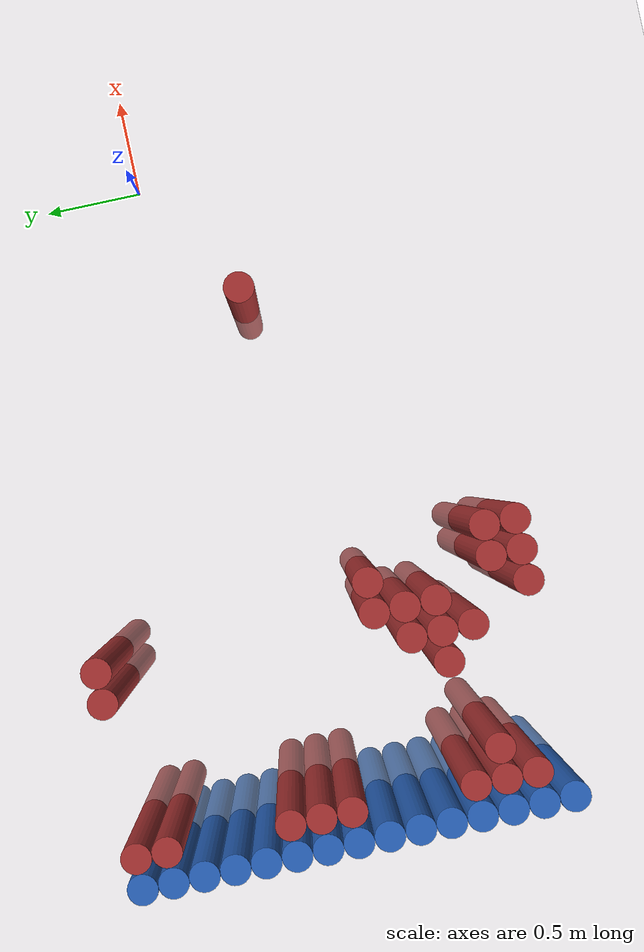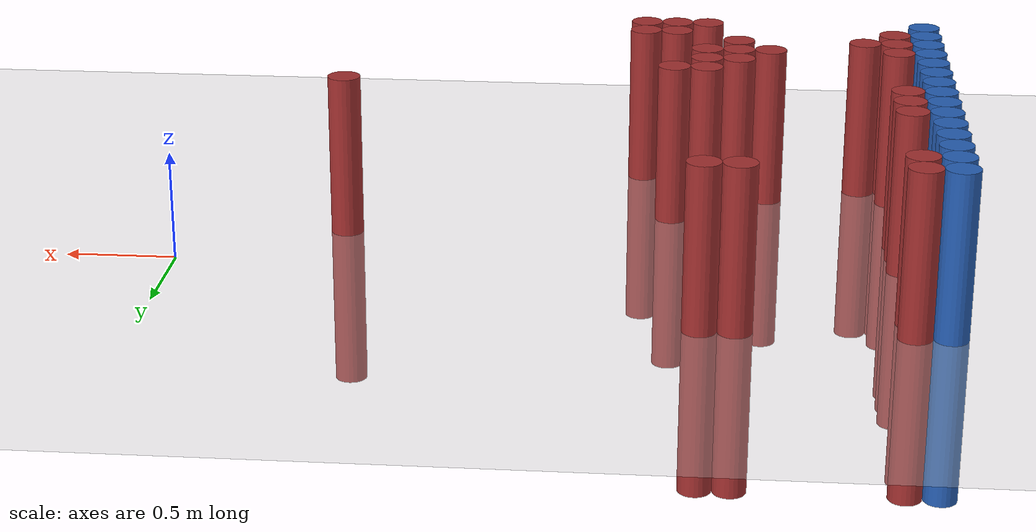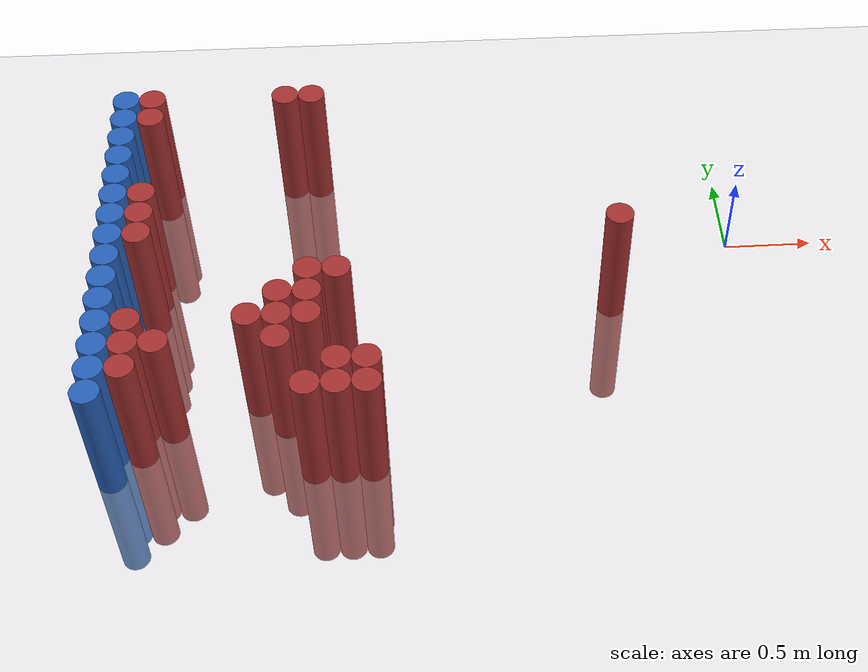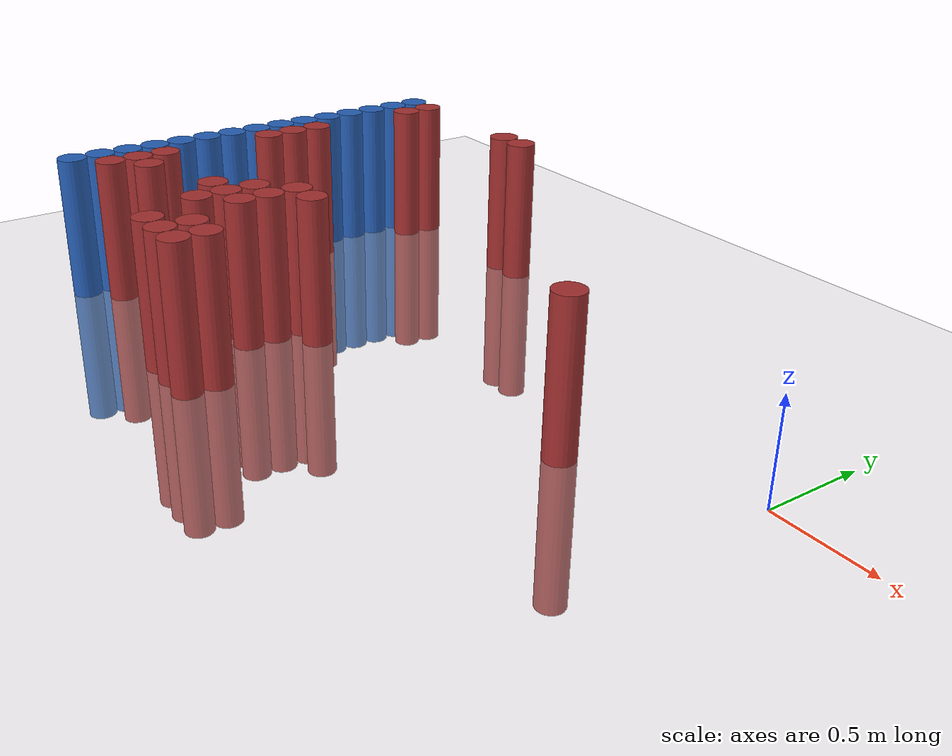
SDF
<sdf version="1.6">
 <world name="default">
  <model name="ground_plane">
   <static>1</static>
   <link name="link">
    <collision name="collision">
     <geometry><plane><normal>0 0 1</normal><size>100 100</size></plane></geometry>
     <surface><friction><ode><mu>100</mu><mu2>50</mu2></ode></friction></surface>
    </collision>
    <visual name="visual">
     <cast_shadows>0</cast_shadows>
     <geometry><plane><normal>0 0 1</normal><size>100 100</size></plane></geometry>
     <material>
      <script><uri>file://media/materials/scripts/gazebo.material</uri><name>Gazebo/Grey</name></script>
     </material>
    </visual>
   </link>
  </model>
  <model name="unit_cylinder_97">
   <static>1</static>
   <pose>-3.425000 -1.325000 0.000000 0.000000 0.000000 0.000000</pose>
   <link name="link">
    <inertial>
     <mass>1</mass>
     <inertia><ixx>0.145833</ixx><ixy>0</ixy><ixz>0</ixz><iyy>0.145833</iyy><iyz>0</iyz><izz>0.125</izz></inertia>
    </inertial>
    <collision name="collision">
     <geometry><cylinder><radius>0.075000</radius><length>1.5</length></cylinder></geometry>
    </collision>
    <visual name="visual">
     <geometry><cylinder><radius>0.075000</radius><length>1.5</length></cylinder></geometry>
     <material>
      <ambient>0.152000 0.379000 0.720000 1</ambient>
      <diffuse>0.152000 0.379000 0.720000 1</diffuse>
     </material>
     <material>
      <script><name>Gazebo/Grey</name><uri>file://media/materials/scripts/gazebo.material</uri></script>
     </material>
    </visual>
   </link>
  </model>
  <model name="unit_cylinder_99">
   <static>1</static>
   <pose>-3.425000 -1.175000 0.000000 0.000000 0.000000 0.000000</pose>
   <link name="link">
    <inertial>
     <mass>1</mass>
     <inertia><ixx>0.145833</ixx><ixy>0</ixy><ixz>0</ixz><iyy>0.145833</iyy><iyz>0</iyz><izz>0.125</izz></inertia>
    </inertial>
    <collision name="collision">
     <geometry><cylinder><radius>0.075000</radius><length>1.5</length></cylinder></geometry>
    </collision>
    <visual name="visual">
     <geometry><cylinder><radius>0.075000</radius><length>1.5</length></cylinder></geometry>
     <material>
      <ambient>0.152000 0.379000 0.720000 1</ambient>
      <diffuse>0.152000 0.379000 0.720000 1</diffuse>
     </material>
     <material>
      <script><name>Gazebo/Grey</name><uri>file://media/materials/scripts/gazebo.material</uri></script>
     </material>
    </visual>
   </link>
  </model>
  <model name="unit_cylinder_101">
   <static>1</static>
   <pose>-3.425000 -1.025000 0.000000 0.000000 0.000000 0.000000</pose>
   <link name="link">
    <inertial>
     <mass>1</mass>
     <inertia><ixx>0.145833</ixx><ixy>0</ixy><ixz>0</ixz><iyy>0.145833</iyy><iyz>0</iyz><izz>0.125</izz></inertia>
    </inertial>
    <collision name="collision">
     <geometry><cylinder><radius>0.075000</radius><length>1.5</length></cylinder></geometry>
    </collision>
    <visual name="visual">
     <geometry><cylinder><radius>0.075000</radius><length>1.5</length></cylinder></geometry>
     <material>
      <ambient>0.152000 0.379000 0.720000 1</ambient>
      <diffuse>0.152000 0.379000 0.720000 1</diffuse>
     </material>
     <material>
      <script><name>Gazebo/Grey</name><uri>file://media/materials/scripts/gazebo.material</uri></script>
     </material>
    </visual>
   </link>
  </model>
  <model name="unit_cylinder_103">
   <static>1</static>
   <pose>-3.425000 -0.875000 0.000000 0.000000 0.000000 0.000000</pose>
   <link name="link">
    <inertial>
     <mass>1</mass>
     <inertia><ixx>0.145833</ixx><ixy>0</ixy><ixz>0</ixz><iyy>0.145833</iyy><iyz>0</iyz><izz>0.125</izz></inertia>
    </inertial>
    <collision name="collision">
     <geometry><cylinder><radius>0.075000</radius><length>1.5</length></cylinder></geometry>
    </collision>
    <visual name="visual">
     <geometry><cylinder><radius>0.075000</radius><length>1.5</length></cylinder></geometry>
     <material>
      <ambient>0.152000 0.379000 0.720000 1</ambient>
      <diffuse>0.152000 0.379000 0.720000 1</diffuse>
     </material>
     <material>
      <script><name>Gazebo/Grey</name><uri>file://media/materials/scripts/gazebo.material</uri></script>
     </material>
    </visual>
   </link>
  </model>
  <model name="unit_cylinder_105">
   <static>1</static>
   <pose>-3.425000 -0.725000 0.000000 0.000000 0.000000 0.000000</pose>
   <link name="link">
    <inertial>
     <mass>1</mass>
     <inertia><ixx>0.145833</ixx><ixy>0</ixy><ixz>0</ixz><iyy>0.145833</iyy><iyz>0</iyz><izz>0.125</izz></inertia>
    </inertial>
    <collision name="collision">
     <geometry><cylinder><radius>0.075000</radius><length>1.5</length></cylinder></geometry>
    </collision>
    <visual name="visual">
     <geometry><cylinder><radius>0.075000</radius><length>1.5</length></cylinder></geometry>
     <material>
      <ambient>0.152000 0.379000 0.720000 1</ambient>
      <diffuse>0.152000 0.379000 0.720000 1</diffuse>
     </material>
     <material>
      <script><name>Gazebo/Grey</name><uri>file://media/materials/scripts/gazebo.material</uri></script>
     </material>
    </visual>
   </link>
  </model>
  <model name="unit_cylinder_107">
   <static>1</static>
   <pose>-3.425000 -0.575000 0.000000 0.000000 0.000000 0.000000</pose>
   <link name="link">
    <inertial>
     <mass>1</mass>
     <inertia><ixx>0.145833</ixx><ixy>0</ixy><ixz>0</ixz><iyy>0.145833</iyy><iyz>0</iyz><izz>0.125</izz></inertia>
    </inertial>
    <collision name="collision">
     <geometry><cylinder><radius>0.075000</radius><length>1.5</length></cylinder></geometry>
    </collision>
    <visual name="visual">
     <geometry><cylinder><radius>0.075000</radius><length>1.5</length></cylinder></geometry>
     <material>
      <ambient>0.152000 0.379000 0.720000 1</ambient>
      <diffuse>0.152000 0.379000 0.720000 1</diffuse>
     </material>
     <material>
      <script><name>Gazebo/Grey</name><uri>file://media/materials/scripts/gazebo.material</uri></script>
     </material>
    </visual>
   </link>
  </model>
  <model name="unit_cylinder_109">
   <static>1</static>
   <pose>-3.425000 -0.425000 0.000000 0.000000 0.000000 0.000000</pose>
   <link name="link">
    <inertial>
     <mass>1</mass>
     <inertia><ixx>0.145833</ixx><ixy>0</ixy><ixz>0</ixz><iyy>0.145833</iyy><iyz>0</iyz><izz>0.125</izz></inertia>
    </inertial>
    <collision name="collision">
     <geometry><cylinder><radius>0.075000</radius><length>1.5</length></cylinder></geometry>
    </collision>
    <visual name="visual">
     <geometry><cylinder><radius>0.075000</radius><length>1.5</length></cylinder></geometry>
     <material>
      <ambient>0.152000 0.379000 0.720000 1</ambient>
      <diffuse>0.152000 0.379000 0.720000 1</diffuse>
     </material>
     <material>
      <script><name>Gazebo/Grey</name><uri>file://media/materials/scripts/gazebo.material</uri></script>
     </material>
    </visual>
   </link>
  </model>
  <model name="unit_cylinder_111">
   <static>1</static>
   <pose>-3.425000 -0.275000 0.000000 0.000000 0.000000 0.000000</pose>
   <link name="link">
    <inertial>
     <mass>1</mass>
     <inertia><ixx>0.145833</ixx><ixy>0</ixy><ixz>0</ixz><iyy>0.145833</iyy><iyz>0</iyz><izz>0.125</izz></inertia>
    </inertial>
    <collision name="collision">
     <geometry><cylinder><radius>0.075000</radius><length>1.5</length></cylinder></geometry>
    </collision>
    <visual name="visual">
     <geometry><cylinder><radius>0.075000</radius><length>1.5</length></cylinder></geometry>
     <material>
      <ambient>0.152000 0.379000 0.720000 1</ambient>
      <diffuse>0.152000 0.379000 0.720000 1</diffuse>
     </material>
     <material>
      <script><name>Gazebo/Grey</name><uri>file://media/materials/scripts/gazebo.material</uri></script>
     </material>
    </visual>
   </link>
  </model>
  <model name="unit_cylinder_113">
   <static>1</static>
   <pose>-3.425000 -0.125000 0.000000 0.000000 0.000000 0.000000</pose>
   <link name="link">
    <inertial>
     <mass>1</mass>
     <inertia><ixx>0.145833</ixx><ixy>0</ixy><ixz>0</ixz><iyy>0.145833</iyy><iyz>0</iyz><izz>0.125</izz></inertia>
    </inertial>
    <collision name="collision">
     <geometry><cylinder><radius>0.075000</radius><length>1.5</length></cylinder></geometry>
    </collision>
    <visual name="visual">
     <geometry><cylinder><radius>0.075000</radius><length>1.5</length></cylinder></geometry>
     <material>
      <ambient>0.152000 0.379000 0.720000 1</ambient>
      <diffuse>0.152000 0.379000 0.720000 1</diffuse>
     </material>
     <material>
      <script><name>Gazebo/Grey</name><uri>file://media/materials/scripts/gazebo.material</uri></script>
     </material>
    </visual>
   </link>
  </model>
  <model name="unit_cylinder_115">
   <static>1</static>
   <pose>-3.425000 0.025000 0.000000 0.000000 0.000000 0.000000</pose>
   <link name="link">
    <inertial>
     <mass>1</mass>
     <inertia><ixx>0.145833</ixx><ixy>0</ixy><ixz>0</ixz><iyy>0.145833</iyy><iyz>0</iyz><izz>0.125</izz></inertia>
    </inertial>
    <collision name="collision">
     <geometry><cylinder><radius>0.075000</radius><length>1.5</length></cylinder></geometry>
    </collision>
    <visual name="visual">
     <geometry><cylinder><radius>0.075000</radius><length>1.5</length></cylinder></geometry>
     <material>
      <ambient>0.152000 0.379000 0.720000 1</ambient>
      <diffuse>0.152000 0.379000 0.720000 1</diffuse>
     </material>
     <material>
      <script><name>Gazebo/Grey</name><uri>file://media/materials/scripts/gazebo.material</uri></script>
     </material>
    </visual>
   </link>
  </model>
  <model name="unit_cylinder_117">
   <static>1</static>
   <pose>-3.425000 0.175000 0.000000 0.000000 0.000000 0.000000</pose>
   <link name="link">
    <inertial>
     <mass>1</mass>
     <inertia><ixx>0.145833</ixx><ixy>0</ixy><ixz>0</ixz><iyy>0.145833</iyy><iyz>0</iyz><izz>0.125</izz></inertia>
    </inertial>
    <collision name="collision">
     <geometry><cylinder><radius>0.075000</radius><length>1.5</length></cylinder></geometry>
    </collision>
    <visual name="visual">
     <geometry><cylinder><radius>0.075000</radius><length>1.5</length></cylinder></geometry>
     <material>
      <ambient>0.152000 0.379000 0.720000 1</ambient>
      <diffuse>0.152000 0.379000 0.720000 1</diffuse>
     </material>
     <material>
      <script><name>Gazebo/Grey</name><uri>file://media/materials/scripts/gazebo.material</uri></script>
     </material>
    </visual>
   </link>
  </model>
  <model name="unit_cylinder_119">
   <static>1</static>
   <pose>-3.425000 0.325000 0.000000 0.000000 0.000000 0.000000</pose>
   <link name="link">
    <inertial>
     <mass>1</mass>
     <inertia><ixx>0.145833</ixx><ixy>0</ixy><ixz>0</ixz><iyy>0.145833</iyy><iyz>0</iyz><izz>0.125</izz></inertia>
    </inertial>
    <collision name="collision">
     <geometry><cylinder><radius>0.075000</radius><length>1.5</length></cylinder></geometry>
    </collision>
    <visual name="visual">
     <geometry><cylinder><radius>0.075000</radius><length>1.5</length></cylinder></geometry>
     <material>
      <ambient>0.152000 0.379000 0.720000 1</ambient>
      <diffuse>0.152000 0.379000 0.720000 1</diffuse>
     </material>
     <material>
      <script><name>Gazebo/Grey</name><uri>file://media/materials/scripts/gazebo.material</uri></script>
     </material>
    </visual>
   </link>
  </model>
  <model name="unit_cylinder_121">
   <static>1</static>
   <pose>-3.425000 0.475000 0.000000 0.000000 0.000000 0.000000</pose>
   <link name="link">
    <inertial>
     <mass>1</mass>
     <inertia><ixx>0.145833</ixx><ixy>0</ixy><ixz>0</ixz><iyy>0.145833</iyy><iyz>0</iyz><izz>0.125</izz></inertia>
    </inertial>
    <collision name="collision">
     <geometry><cylinder><radius>0.075000</radius><length>1.5</length></cylinder></geometry>
    </collision>
    <visual name="visual">
     <geometry><cylinder><radius>0.075000</radius><length>1.5</length></cylinder></geometry>
     <material>
      <ambient>0.152000 0.379000 0.720000 1</ambient>
      <diffuse>0.152000 0.379000 0.720000 1</diffuse>
     </material>
     <material>
      <script><name>Gazebo/Grey</name><uri>file://media/materials/scripts/gazebo.material</uri></script>
     </material>
    </visual>
   </link>
  </model>
  <model name="unit_cylinder_123">
   <static>1</static>
   <pose>-3.425000 0.625000 0.000000 0.000000 0.000000 0.000000</pose>
   <link name="link">
    <inertial>
     <mass>1</mass>
     <inertia><ixx>0.145833</ixx><ixy>0</ixy><ixz>0</ixz><iyy>0.145833</iyy><iyz>0</iyz><izz>0.125</izz></inertia>
    </inertial>
    <collision name="collision">
     <geometry><cylinder><radius>0.075000</radius><length>1.5</length></cylinder></geometry>
    </collision>
    <visual name="visual">
     <geometry><cylinder><radius>0.075000</radius><length>1.5</length></cylinder></geometry>
     <material>
      <ambient>0.152000 0.379000 0.720000 1</ambient>
      <diffuse>0.152000 0.379000 0.720000 1</diffuse>
     </material>
     <material>
      <script><name>Gazebo/Grey</name><uri>file://media/materials/scripts/gazebo.material</uri></script>
     </material>
    </visual>
   </link>
  </model>
  <model name="unit_cylinder_211">
   <static>1</static>
   <pose>-3.425000 -1.475000 0.000000 0.000000 0.000000 0.000000</pose>
   <link name="link">
    <inertial>
     <mass>1</mass>
     <inertia><ixx>0.145833</ixx><ixy>0</ixy><ixz>0</ixz><iyy>0.145833</iyy><iyz>0</iyz><izz>0.125</izz></inertia>
    </inertial>
    <collision name="collision">
     <geometry><cylinder><radius>0.075000</radius><length>1.5</length></cylinder></geometry>
    </collision>
    <visual name="visual">
     <geometry><cylinder><radius>0.075000</radius><length>1.5</length></cylinder></geometry>
     <material>
      <ambient>0.152000 0.379000 0.720000 1</ambient>
      <diffuse>0.152000 0.379000 0.720000 1</diffuse>
     </material>
     <material>
      <script><name>Gazebo/Grey</name><uri>file://media/materials/scripts/gazebo.material</uri></script>
     </material>
    </visual>
   </link>
  </model>
  <model name="unit_cylinder_212">
   <static>1</static>
   <pose>-3.425000 -1.325000 0.000000 0.000000 0.000000 0.000000</pose>
   <link name="link">
    <inertial>
     <mass>1</mass>
     <inertia><ixx>0.145833</ixx><ixy>0</ixy><ixz>0</ixz><iyy>0.145833</iyy><iyz>0</iyz><izz>0.125</izz></inertia>
    </inertial>
    <collision name="collision">
     <geometry><cylinder><radius>0.075000</radius><length>1.5</length></cylinder></geometry>
    </collision>
    <visual name="visual">
     <geometry><cylinder><radius>0.075000</radius><length>1.5</length></cylinder></geometry>
     <material>
      <ambient>0.152000 0.379000 0.720000 1</ambient>
      <diffuse>0.152000 0.379000 0.720000 1</diffuse>
     </material>
     <material>
      <script><name>Gazebo/Grey</name><uri>file://media/materials/scripts/gazebo.material</uri></script>
     </material>
    </visual>
   </link>
  </model>
  <model name="unit_cylinder_213">
   <static>1</static>
   <pose>-3.425000 -1.175000 0.000000 0.000000 0.000000 0.000000</pose>
   <link name="link">
    <inertial>
     <mass>1</mass>
     <inertia><ixx>0.145833</ixx><ixy>0</ixy><ixz>0</ixz><iyy>0.145833</iyy><iyz>0</iyz><izz>0.125</izz></inertia>
    </inertial>
    <collision name="collision">
     <geometry><cylinder><radius>0.075000</radius><length>1.5</length></cylinder></geometry>
    </collision>
    <visual name="visual">
     <geometry><cylinder><radius>0.075000</radius><length>1.5</length></cylinder></geometry>
     <material>
      <ambient>0.152000 0.379000 0.720000 1</ambient>
      <diffuse>0.152000 0.379000 0.720000 1</diffuse>
     </material>
     <material>
      <script><name>Gazebo/Grey</name><uri>file://media/materials/scripts/gazebo.material</uri></script>
     </material>
    </visual>
   </link>
  </model>
  <model name="unit_cylinder_214">
   <static>1</static>
   <pose>-3.425000 -1.025000 0.000000 0.000000 0.000000 0.000000</pose>
   <link name="link">
    <inertial>
     <mass>1</mass>
     <inertia><ixx>0.145833</ixx><ixy>0</ixy><ixz>0</ixz><iyy>0.145833</iyy><iyz>0</iyz><izz>0.125</izz></inertia>
    </inertial>
    <collision name="collision">
     <geometry><cylinder><radius>0.075000</radius><length>1.5</length></cylinder></geometry>
    </collision>
    <visual name="visual">
     <geometry><cylinder><radius>0.075000</radius><length>1.5</length></cylinder></geometry>
     <material>
      <ambient>0.152000 0.379000 0.720000 1</ambient>
      <diffuse>0.152000 0.379000 0.720000 1</diffuse>
     </material>
     <material>
      <script><name>Gazebo/Grey</name><uri>file://media/materials/scripts/gazebo.material</uri></script>
     </material>
    </visual>
   </link>
  </model>
  <model name="unit_cylinder_215">
   <static>1</static>
   <pose>-3.425000 -0.875000 0.000000 0.000000 0.000000 0.000000</pose>
   <link name="link">
    <inertial>
     <mass>1</mass>
     <inertia><ixx>0.145833</ixx><ixy>0</ixy><ixz>0</ixz><iyy>0.145833</iyy><iyz>0</iyz><izz>0.125</izz></inertia>
    </inertial>
    <collision name="collision">
     <geometry><cylinder><radius>0.075000</radius><length>1.5</length></cylinder></geometry>
    </collision>
    <visual name="visual">
     <geometry><cylinder><radius>0.075000</radius><length>1.5</length></cylinder></geometry>
     <material>
      <ambient>0.152000 0.379000 0.720000 1</ambient>
      <diffuse>0.152000 0.379000 0.720000 1</diffuse>
     </material>
     <material>
      <script><name>Gazebo/Grey</name><uri>file://media/materials/scripts/gazebo.material</uri></script>
     </material>
    </visual>
   </link>
  </model>
  <model name="unit_cylinder_216">
   <static>1</static>
   <pose>-3.425000 -0.725000 0.000000 0.000000 0.000000 0.000000</pose>
   <link name="link">
    <inertial>
     <mass>1</mass>
     <inertia><ixx>0.145833</ixx><ixy>0</ixy><ixz>0</ixz><iyy>0.145833</iyy><iyz>0</iyz><izz>0.125</izz></inertia>
    </inertial>
    <collision name="collision">
     <geometry><cylinder><radius>0.075000</radius><length>1.5</length></cylinder></geometry>
    </collision>
    <visual name="visual">
     <geometry><cylinder><radius>0.075000</radius><length>1.5</length></cylinder></geometry>
     <material>
      <ambient>0.152000 0.379000 0.720000 1</ambient>
      <diffuse>0.152000 0.379000 0.720000 1</diffuse>
     </material>
     <material>
      <script><name>Gazebo/Grey</name><uri>file://media/materials/scripts/gazebo.material</uri></script>
     </material>
    </visual>
   </link>
  </model>
  <model name="unit_cylinder_217">
   <static>1</static>
   <pose>-3.425000 -0.575000 0.000000 0.000000 0.000000 0.000000</pose>
   <link name="link">
    <inertial>
     <mass>1</mass>
     <inertia><ixx>0.145833</ixx><ixy>0</ixy><ixz>0</ixz><iyy>0.145833</iyy><iyz>0</iyz><izz>0.125</izz></inertia>
    </inertial>
    <collision name="collision">
     <geometry><cylinder><radius>0.075000</radius><length>1.5</length></cylinder></geometry>
    </collision>
    <visual name="visual">
     <geometry><cylinder><radius>0.075000</radius><length>1.5</length></cylinder></geometry>
     <material>
      <ambient>0.152000 0.379000 0.720000 1</ambient>
      <diffuse>0.152000 0.379000 0.720000 1</diffuse>
     </material>
     <material>
      <script><name>Gazebo/Grey</name><uri>file://media/materials/scripts/gazebo.material</uri></script>
     </material>
    </visual>
   </link>
  </model>
  <model name="unit_cylinder_218">
   <static>1</static>
   <pose>-3.425000 -0.425000 0.000000 0.000000 0.000000 0.000000</pose>
   <link name="link">
    <inertial>
     <mass>1</mass>
     <inertia><ixx>0.145833</ixx><ixy>0</ixy><ixz>0</ixz><iyy>0.145833</iyy><iyz>0</iyz><izz>0.125</izz></inertia>
    </inertial>
    <collision name="collision">
     <geometry><cylinder><radius>0.075000</radius><length>1.5</length></cylinder></geometry>
    </collision>
    <visual name="visual">
     <geometry><cylinder><radius>0.075000</radius><length>1.5</length></cylinder></geometry>
     <material>
      <ambient>0.152000 0.379000 0.720000 1</ambient>
      <diffuse>0.152000 0.379000 0.720000 1</diffuse>
     </material>
     <material>
      <script><name>Gazebo/Grey</name><uri>file://media/materials/scripts/gazebo.material</uri></script>
     </material>
    </visual>
   </link>
  </model>
  <model name="unit_cylinder_219">
   <static>1</static>
   <pose>-3.425000 -0.275000 0.000000 0.000000 0.000000 0.000000</pose>
   <link name="link">
    <inertial>
     <mass>1</mass>
     <inertia><ixx>0.145833</ixx><ixy>0</ixy><ixz>0</ixz><iyy>0.145833</iyy><iyz>0</iyz><izz>0.125</izz></inertia>
    </inertial>
    <collision name="collision">
     <geometry><cylinder><radius>0.075000</radius><length>1.5</length></cylinder></geometry>
    </collision>
    <visual name="visual">
     <geometry><cylinder><radius>0.075000</radius><length>1.5</length></cylinder></geometry>
     <material>
      <ambient>0.152000 0.379000 0.720000 1</ambient>
      <diffuse>0.152000 0.379000 0.720000 1</diffuse>
     </material>
     <material>
      <script><name>Gazebo/Grey</name><uri>file://media/materials/scripts/gazebo.material</uri></script>
     </material>
    </visual>
   </link>
  </model>
  <model name="unit_cylinder_220">
   <static>1</static>
   <pose>-3.425000 -0.125000 0.000000 0.000000 0.000000 0.000000</pose>
   <link name="link">
    <inertial>
     <mass>1</mass>
     <inertia><ixx>0.145833</ixx><ixy>0</ixy><ixz>0</ixz><iyy>0.145833</iyy><iyz>0</iyz><izz>0.125</izz></inertia>
    </inertial>
    <collision name="collision">
     <geometry><cylinder><radius>0.075000</radius><length>1.5</length></cylinder></geometry>
    </collision>
    <visual name="visual">
     <geometry><cylinder><radius>0.075000</radius><length>1.5</length></cylinder></geometry>
     <material>
      <ambient>0.152000 0.379000 0.720000 1</ambient>
      <diffuse>0.152000 0.379000 0.720000 1</diffuse>
     </material>
     <material>
      <script><name>Gazebo/Grey</name><uri>file://media/materials/scripts/gazebo.material</uri></script>
     </material>
    </visual>
   </link>
  </model>
  <model name="unit_cylinder_221">
   <static>1</static>
   <pose>-3.425000 0.025000 0.000000 0.000000 0.000000 0.000000</pose>
   <link name="link">
    <inertial>
     <mass>1</mass>
     <inertia><ixx>0.145833</ixx><ixy>0</ixy><ixz>0</ixz><iyy>0.145833</iyy><iyz>0</iyz><izz>0.125</izz></inertia>
    </inertial>
    <collision name="collision">
     <geometry><cylinder><radius>0.075000</radius><length>1.5</length></cylinder></geometry>
    </collision>
    <visual name="visual">
     <geometry><cylinder><radius>0.075000</radius><length>1.5</length></cylinder></geometry>
     <material>
      <ambient>0.152000 0.379000 0.720000 1</ambient>
      <diffuse>0.152000 0.379000 0.720000 1</diffuse>
     </material>
     <material>
      <script><name>Gazebo/Grey</name><uri>file://media/materials/scripts/gazebo.material</uri></script>
     </material>
    </visual>
   </link>
  </model>
  <model name="unit_cylinder_222">
   <static>1</static>
   <pose>-3.425000 0.175000 0.000000 0.000000 0.000000 0.000000</pose>
   <link name="link">
    <inertial>
     <mass>1</mass>
     <inertia><ixx>0.145833</ixx><ixy>0</ixy><ixz>0</ixz><iyy>0.145833</iyy><iyz>0</iyz><izz>0.125</izz></inertia>
    </inertial>
    <collision name="collision">
     <geometry><cylinder><radius>0.075000</radius><length>1.5</length></cylinder></geometry>
    </collision>
    <visual name="visual">
     <geometry><cylinder><radius>0.075000</radius><length>1.5</length></cylinder></geometry>
     <material>
      <ambient>0.152000 0.379000 0.720000 1</ambient>
      <diffuse>0.152000 0.379000 0.720000 1</diffuse>
     </material>
     <material>
      <script><name>Gazebo/Grey</name><uri>file://media/materials/scripts/gazebo.material</uri></script>
     </material>
    </visual>
   </link>
  </model>
  <model name="unit_cylinder_223">
   <static>1</static>
   <pose>-3.425000 0.325000 0.000000 0.000000 0.000000 0.000000</pose>
   <link name="link">
    <inertial>
     <mass>1</mass>
     <inertia><ixx>0.145833</ixx><ixy>0</ixy><ixz>0</ixz><iyy>0.145833</iyy><iyz>0</iyz><izz>0.125</izz></inertia>
    </inertial>
    <collision name="collision">
     <geometry><cylinder><radius>0.075000</radius><length>1.5</length></cylinder></geometry>
    </collision>
    <visual name="visual">
     <geometry><cylinder><radius>0.075000</radius><length>1.5</length></cylinder></geometry>
     <material>
      <ambient>0.152000 0.379000 0.720000 1</ambient>
      <diffuse>0.152000 0.379000 0.720000 1</diffuse>
     </material>
     <material>
      <script><name>Gazebo/Grey</name><uri>file://media/materials/scripts/gazebo.material</uri></script>
     </material>
    </visual>
   </link>
  </model>
  <model name="unit_cylinder_224">
   <static>1</static>
   <pose>-3.425000 0.475000 0.000000 0.000000 0.000000 0.000000</pose>
   <link name="link">
    <inertial>
     <mass>1</mass>
     <inertia><ixx>0.145833</ixx><ixy>0</ixy><ixz>0</ixz><iyy>0.145833</iyy><iyz>0</iyz><izz>0.125</izz></inertia>
    </inertial>
    <collision name="collision">
     <geometry><cylinder><radius>0.075000</radius><length>1.5</length></cylinder></geometry>
    </collision>
    <visual name="visual">
     <geometry><cylinder><radius>0.075000</radius><length>1.5</length></cylinder></geometry>
     <material>
      <ambient>0.152000 0.379000 0.720000 1</ambient>
      <diffuse>0.152000 0.379000 0.720000 1</diffuse>
     </material>
     <material>
      <script><name>Gazebo/Grey</name><uri>file://media/materials/scripts/gazebo.material</uri></script>
     </material>
    </visual>
   </link>
  </model>
  <model name="unit_cylinder_225">
   <static>1</static>
   <pose>-3.425000 0.625000 0.000000 0.000000 0.000000 0.000000</pose>
   <link name="link">
    <inertial>
     <mass>1</mass>
     <inertia><ixx>0.145833</ixx><ixy>0</ixy><ixz>0</ixz><iyy>0.145833</iyy><iyz>0</iyz><izz>0.125</izz></inertia>
    </inertial>
    <collision name="collision">
     <geometry><cylinder><radius>0.075000</radius><length>1.5</length></cylinder></geometry>
    </collision>
    <visual name="visual">
     <geometry><cylinder><radius>0.075000</radius><length>1.5</length></cylinder></geometry>
     <material>
      <ambient>0.152000 0.379000 0.720000 1</ambient>
      <diffuse>0.152000 0.379000 0.720000 1</diffuse>
     </material>
     <material>
      <script><name>Gazebo/Grey</name><uri>file://media/materials/scripts/gazebo.material</uri></script>
     </material>
    </visual>
   </link>
  </model>
  <model name="unit_cylinder_258">
   <static>1</static>
   <pose>-3.275000 -1.325000 0.000000 0.000000 0.000000 0.000000</pose>
   <link name="link">
    <inertial>
     <mass>1</mass>
     <inertia><ixx>0.145833</ixx><ixy>0</ixy><ixz>0</ixz><iyy>0.145833</iyy><iyz>0</iyz><izz>0.125</izz></inertia>
    </inertial>
    <collision name="collision">
     <geometry><cylinder><radius>0.075000</radius><length>1.5</length></cylinder></geometry>
    </collision>
    <visual name="visual">
     <geometry><cylinder><radius>0.075000</radius><length>1.5</length></cylinder></geometry>
     <material>
      <ambient>0.648000 0.192000 0.192000 1</ambient>
      <diffuse>0.648000 0.192000 0.192000 1</diffuse>
     </material>
     <material>
      <script><name>Gazebo/Grey</name><uri>file://media/materials/scripts/gazebo.material</uri></script>
     </material>
    </visual>
   </link>
  </model>
  <model name="unit_cylinder_259">
   <static>1</static>
   <pose>-3.275000 -1.175000 0.000000 0.000000 0.000000 0.000000</pose>
   <link name="link">
    <inertial>
     <mass>1</mass>
     <inertia><ixx>0.145833</ixx><ixy>0</ixy><ixz>0</ixz><iyy>0.145833</iyy><iyz>0</iyz><izz>0.125</izz></inertia>
    </inertial>
    <collision name="collision">
     <geometry><cylinder><radius>0.075000</radius><length>1.5</length></cylinder></geometry>
    </collision>
    <visual name="visual">
     <geometry><cylinder><radius>0.075000</radius><length>1.5</length></cylinder></geometry>
     <material>
      <ambient>0.648000 0.192000 0.192000 1</ambient>
      <diffuse>0.648000 0.192000 0.192000 1</diffuse>
     </material>
     <material>
      <script><name>Gazebo/Grey</name><uri>file://media/materials/scripts/gazebo.material</uri></script>
     </material>
    </visual>
   </link>
  </model>
  <model name="unit_cylinder_260">
   <static>1</static>
   <pose>-3.275000 -1.025000 0.000000 0.000000 0.000000 0.000000</pose>
   <link name="link">
    <inertial>
     <mass>1</mass>
     <inertia><ixx>0.145833</ixx><ixy>0</ixy><ixz>0</ixz><iyy>0.145833</iyy><iyz>0</iyz><izz>0.125</izz></inertia>
    </inertial>
    <collision name="collision">
     <geometry><cylinder><radius>0.075000</radius><length>1.5</length></cylinder></geometry>
    </collision>
    <visual name="visual">
     <geometry><cylinder><radius>0.075000</radius><length>1.5</length></cylinder></geometry>
     <material>
      <ambient>0.648000 0.192000 0.192000 1</ambient>
      <diffuse>0.648000 0.192000 0.192000 1</diffuse>
     </material>
     <material>
      <script><name>Gazebo/Grey</name><uri>file://media/materials/scripts/gazebo.material</uri></script>
     </material>
    </visual>
   </link>
  </model>
  <model name="unit_cylinder_261">
   <static>1</static>
   <pose>-3.275000 -0.425000 0.000000 0.000000 0.000000 0.000000</pose>
   <link name="link">
    <inertial>
     <mass>1</mass>
     <inertia><ixx>0.145833</ixx><ixy>0</ixy><ixz>0</ixz><iyy>0.145833</iyy><iyz>0</iyz><izz>0.125</izz></inertia>
    </inertial>
    <collision name="collision">
     <geometry><cylinder><radius>0.075000</radius><length>1.5</length></cylinder></geometry>
    </collision>
    <visual name="visual">
     <geometry><cylinder><radius>0.075000</radius><length>1.5</length></cylinder></geometry>
     <material>
      <ambient>0.648000 0.192000 0.192000 1</ambient>
      <diffuse>0.648000 0.192000 0.192000 1</diffuse>
     </material>
     <material>
      <script><name>Gazebo/Grey</name><uri>file://media/materials/scripts/gazebo.material</uri></script>
     </material>
    </visual>
   </link>
  </model>
  <model name="unit_cylinder_262">
   <static>1</static>
   <pose>-3.275000 -0.275000 0.000000 0.000000 0.000000 0.000000</pose>
   <link name="link">
    <inertial>
     <mass>1</mass>
     <inertia><ixx>0.145833</ixx><ixy>0</ixy><ixz>0</ixz><iyy>0.145833</iyy><iyz>0</iyz><izz>0.125</izz></inertia>
    </inertial>
    <collision name="collision">
     <geometry><cylinder><radius>0.075000</radius><length>1.5</length></cylinder></geometry>
    </collision>
    <visual name="visual">
     <geometry><cylinder><radius>0.075000</radius><length>1.5</length></cylinder></geometry>
     <material>
      <ambient>0.648000 0.192000 0.192000 1</ambient>
      <diffuse>0.648000 0.192000 0.192000 1</diffuse>
     </material>
     <material>
      <script><name>Gazebo/Grey</name><uri>file://media/materials/scripts/gazebo.material</uri></script>
     </material>
    </visual>
   </link>
  </model>
  <model name="unit_cylinder_263">
   <static>1</static>
   <pose>-3.275000 -0.125000 0.000000 0.000000 0.000000 0.000000</pose>
   <link name="link">
    <inertial>
     <mass>1</mass>
     <inertia><ixx>0.145833</ixx><ixy>0</ixy><ixz>0</ixz><iyy>0.145833</iyy><iyz>0</iyz><izz>0.125</izz></inertia>
    </inertial>
    <collision name="collision">
     <geometry><cylinder><radius>0.075000</radius><length>1.5</length></cylinder></geometry>
    </collision>
    <visual name="visual">
     <geometry><cylinder><radius>0.075000</radius><length>1.5</length></cylinder></geometry>
     <material>
      <ambient>0.648000 0.192000 0.192000 1</ambient>
      <diffuse>0.648000 0.192000 0.192000 1</diffuse>
     </material>
     <material>
      <script><name>Gazebo/Grey</name><uri>file://media/materials/scripts/gazebo.material</uri></script>
     </material>
    </visual>
   </link>
  </model>
  <model name="unit_cylinder_264">
   <static>1</static>
   <pose>-3.275000 0.475000 0.000000 0.000000 0.000000 0.000000</pose>
   <link name="link">
    <inertial>
     <mass>1</mass>
     <inertia><ixx>0.145833</ixx><ixy>0</ixy><ixz>0</ixz><iyy>0.145833</iyy><iyz>0</iyz><izz>0.125</izz></inertia>
    </inertial>
    <collision name="collision">
     <geometry><cylinder><radius>0.075000</radius><length>1.5</length></cylinder></geometry>
    </collision>
    <visual name="visual">
     <geometry><cylinder><radius>0.075000</radius><length>1.5</length></cylinder></geometry>
     <material>
      <ambient>0.648000 0.192000 0.192000 1</ambient>
      <diffuse>0.648000 0.192000 0.192000 1</diffuse>
     </material>
     <material>
      <script><name>Gazebo/Grey</name><uri>file://media/materials/scripts/gazebo.material</uri></script>
     </material>
    </visual>
   </link>
  </model>
  <model name="unit_cylinder_265">
   <static>1</static>
   <pose>-3.275000 0.625000 0.000000 0.000000 0.000000 0.000000</pose>
   <link name="link">
    <inertial>
     <mass>1</mass>
     <inertia><ixx>0.145833</ixx><ixy>0</ixy><ixz>0</ixz><iyy>0.145833</iyy><iyz>0</iyz><izz>0.125</izz></inertia>
    </inertial>
    <collision name="collision">
     <geometry><cylinder><radius>0.075000</radius><length>1.5</length></cylinder></geometry>
    </collision>
    <visual name="visual">
     <geometry><cylinder><radius>0.075000</radius><length>1.5</length></cylinder></geometry>
     <material>
      <ambient>0.648000 0.192000 0.192000 1</ambient>
      <diffuse>0.648000 0.192000 0.192000 1</diffuse>
     </material>
     <material>
      <script><name>Gazebo/Grey</name><uri>file://media/materials/scripts/gazebo.material</uri></script>
     </material>
    </visual>
   </link>
  </model>
  <model name="unit_cylinder_277">
   <static>1</static>
   <pose>-3.125000 -1.175000 0.000000 0.000000 0.000000 0.000000</pose>
   <link name="link">
    <inertial>
     <mass>1</mass>
     <inertia><ixx>0.145833</ixx><ixy>0</ixy><ixz>0</ixz><iyy>0.145833</iyy><iyz>0</iyz><izz>0.125</izz></inertia>
    </inertial>
    <collision name="collision">
     <geometry><cylinder><radius>0.075000</radius><length>1.5</length></cylinder></geometry>
    </collision>
    <visual name="visual">
     <geometry><cylinder><radius>0.075000</radius><length>1.5</length></cylinder></geometry>
     <material>
      <ambient>0.648000 0.192000 0.192000 1</ambient>
      <diffuse>0.648000 0.192000 0.192000 1</diffuse>
     </material>
     <material>
      <script><name>Gazebo/Grey</name><uri>file://media/materials/scripts/gazebo.material</uri></script>
     </material>
    </visual>
   </link>
  </model>
  <model name="unit_cylinder_294">
   <static>1</static>
   <pose>-2.675000 -1.025000 0.000000 0.000000 0.000000 0.000000</pose>
   <link name="link">
    <inertial>
     <mass>1</mass>
     <inertia><ixx>0.145833</ixx><ixy>0</ixy><ixz>0</ixz><iyy>0.145833</iyy><iyz>0</iyz><izz>0.125</izz></inertia>
    </inertial>
    <collision name="collision">
     <geometry><cylinder><radius>0.075000</radius><length>1.5</length></cylinder></geometry>
    </collision>
    <visual name="visual">
     <geometry><cylinder><radius>0.075000</radius><length>1.5</length></cylinder></geometry>
     <material>
      <ambient>0.648000 0.192000 0.192000 1</ambient>
      <diffuse>0.648000 0.192000 0.192000 1</diffuse>
     </material>
     <material>
      <script><name>Gazebo/Grey</name><uri>file://media/materials/scripts/gazebo.material</uri></script>
     </material>
    </visual>
   </link>
  </model>
  <model name="unit_cylinder_304">
   <static>1</static>
   <pose>-2.525000 -1.175000 0.000000 0.000000 0.000000 0.000000</pose>
   <link name="link">
    <inertial>
     <mass>1</mass>
     <inertia><ixx>0.145833</ixx><ixy>0</ixy><ixz>0</ixz><iyy>0.145833</iyy><iyz>0</iyz><izz>0.125</izz></inertia>
    </inertial>
    <collision name="collision">
     <geometry><cylinder><radius>0.075000</radius><length>1.5</length></cylinder></geometry>
    </collision>
    <visual name="visual">
     <geometry><cylinder><radius>0.075000</radius><length>1.5</length></cylinder></geometry>
     <material>
      <ambient>0.648000 0.192000 0.192000 1</ambient>
      <diffuse>0.648000 0.192000 0.192000 1</diffuse>
     </material>
     <material>
      <script><name>Gazebo/Grey</name><uri>file://media/materials/scripts/gazebo.material</uri></script>
     </material>
    </visual>
   </link>
  </model>
  <model name="unit_cylinder_305">
   <static>1</static>
   <pose>-2.525000 -1.025000 0.000000 0.000000 0.000000 0.000000</pose>
   <link name="link">
    <inertial>
     <mass>1</mass>
     <inertia><ixx>0.145833</ixx><ixy>0</ixy><ixz>0</ixz><iyy>0.145833</iyy><iyz>0</iyz><izz>0.125</izz></inertia>
    </inertial>
    <collision name="collision">
     <geometry><cylinder><radius>0.075000</radius><length>1.5</length></cylinder></geometry>
    </collision>
    <visual name="visual">
     <geometry><cylinder><radius>0.075000</radius><length>1.5</length></cylinder></geometry>
     <material>
      <ambient>0.648000 0.192000 0.192000 1</ambient>
      <diffuse>0.648000 0.192000 0.192000 1</diffuse>
     </material>
     <material>
      <script><name>Gazebo/Grey</name><uri>file://media/materials/scripts/gazebo.material</uri></script>
     </material>
    </visual>
   </link>
  </model>
  <model name="unit_cylinder_306">
   <static>1</static>
   <pose>-2.525000 -0.875000 0.000000 0.000000 0.000000 0.000000</pose>
   <link name="link">
    <inertial>
     <mass>1</mass>
     <inertia><ixx>0.145833</ixx><ixy>0</ixy><ixz>0</ixz><iyy>0.145833</iyy><iyz>0</iyz><izz>0.125</izz></inertia>
    </inertial>
    <collision name="collision">
     <geometry><cylinder><radius>0.075000</radius><length>1.5</length></cylinder></geometry>
    </collision>
    <visual name="visual">
     <geometry><cylinder><radius>0.075000</radius><length>1.5</length></cylinder></geometry>
     <material>
      <ambient>0.648000 0.192000 0.192000 1</ambient>
      <diffuse>0.648000 0.192000 0.192000 1</diffuse>
     </material>
     <material>
      <script><name>Gazebo/Grey</name><uri>file://media/materials/scripts/gazebo.material</uri></script>
     </material>
    </visual>
   </link>
  </model>
  <model name="unit_cylinder_307">
   <static>1</static>
   <pose>-2.525000 0.625000 0.000000 0.000000 0.000000 0.000000</pose>
   <link name="link">
    <inertial>
     <mass>1</mass>
     <inertia><ixx>0.145833</ixx><ixy>0</ixy><ixz>0</ixz><iyy>0.145833</iyy><iyz>0</iyz><izz>0.125</izz></inertia>
    </inertial>
    <collision name="collision">
     <geometry><cylinder><radius>0.075000</radius><length>1.5</length></cylinder></geometry>
    </collision>
    <visual name="visual">
     <geometry><cylinder><radius>0.075000</radius><length>1.5</length></cylinder></geometry>
     <material>
      <ambient>0.648000 0.192000 0.192000 1</ambient>
      <diffuse>0.648000 0.192000 0.192000 1</diffuse>
     </material>
     <material>
      <script><name>Gazebo/Grey</name><uri>file://media/materials/scripts/gazebo.material</uri></script>
     </material>
    </visual>
   </link>
  </model>
  <model name="unit_cylinder_317">
   <static>1</static>
   <pose>-2.375000 -1.475000 0.000000 0.000000 0.000000 0.000000</pose>
   <link name="link">
    <inertial>
     <mass>1</mass>
     <inertia><ixx>0.145833</ixx><ixy>0</ixy><ixz>0</ixz><iyy>0.145833</iyy><iyz>0</iyz><izz>0.125</izz></inertia>
    </inertial>
    <collision name="collision">
     <geometry><cylinder><radius>0.075000</radius><length>1.5</length></cylinder></geometry>
    </collision>
    <visual name="visual">
     <geometry><cylinder><radius>0.075000</radius><length>1.5</length></cylinder></geometry>
     <material>
      <ambient>0.648000 0.192000 0.192000 1</ambient>
      <diffuse>0.648000 0.192000 0.192000 1</diffuse>
     </material>
     <material>
      <script><name>Gazebo/Grey</name><uri>file://media/materials/scripts/gazebo.material</uri></script>
     </material>
    </visual>
   </link>
  </model>
  <model name="unit_cylinder_318">
   <static>1</static>
   <pose>-2.375000 -1.025000 0.000000 0.000000 0.000000 0.000000</pose>
   <link name="link">
    <inertial>
     <mass>1</mass>
     <inertia><ixx>0.145833</ixx><ixy>0</ixy><ixz>0</ixz><iyy>0.145833</iyy><iyz>0</iyz><izz>0.125</izz></inertia>
    </inertial>
    <collision name="collision">
     <geometry><cylinder><radius>0.075000</radius><length>1.5</length></cylinder></geometry>
    </collision>
    <visual name="visual">
     <geometry><cylinder><radius>0.075000</radius><length>1.5</length></cylinder></geometry>
     <material>
      <ambient>0.648000 0.192000 0.192000 1</ambient>
      <diffuse>0.648000 0.192000 0.192000 1</diffuse>
     </material>
     <material>
      <script><name>Gazebo/Grey</name><uri>file://media/materials/scripts/gazebo.material</uri></script>
     </material>
    </visual>
   </link>
  </model>
  <model name="unit_cylinder_319">
   <static>1</static>
   <pose>-2.375000 -0.875000 0.000000 0.000000 0.000000 0.000000</pose>
   <link name="link">
    <inertial>
     <mass>1</mass>
     <inertia><ixx>0.145833</ixx><ixy>0</ixy><ixz>0</ixz><iyy>0.145833</iyy><iyz>0</iyz><izz>0.125</izz></inertia>
    </inertial>
    <collision name="collision">
     <geometry><cylinder><radius>0.075000</radius><length>1.5</length></cylinder></geometry>
    </collision>
    <visual name="visual">
     <geometry><cylinder><radius>0.075000</radius><length>1.5</length></cylinder></geometry>
     <material>
      <ambient>0.648000 0.192000 0.192000 1</ambient>
      <diffuse>0.648000 0.192000 0.192000 1</diffuse>
     </material>
     <material>
      <script><name>Gazebo/Grey</name><uri>file://media/materials/scripts/gazebo.material</uri></script>
     </material>
    </visual>
   </link>
  </model>
  <model name="unit_cylinder_320">
   <static>1</static>
   <pose>-2.375000 -0.725000 0.000000 0.000000 0.000000 0.000000</pose>
   <link name="link">
    <inertial>
     <mass>1</mass>
     <inertia><ixx>0.145833</ixx><ixy>0</ixy><ixz>0</ixz><iyy>0.145833</iyy><iyz>0</iyz><izz>0.125</izz></inertia>
    </inertial>
    <collision name="collision">
     <geometry><cylinder><radius>0.075000</radius><length>1.5</length></cylinder></geometry>
    </collision>
    <visual name="visual">
     <geometry><cylinder><radius>0.075000</radius><length>1.5</length></cylinder></geometry>
     <material>
      <ambient>0.648000 0.192000 0.192000 1</ambient>
      <diffuse>0.648000 0.192000 0.192000 1</diffuse>
     </material>
     <material>
      <script><name>Gazebo/Grey</name><uri>file://media/materials/scripts/gazebo.material</uri></script>
     </material>
    </visual>
   </link>
  </model>
  <model name="unit_cylinder_321">
   <static>1</static>
   <pose>-2.375000 0.625000 0.000000 0.000000 0.000000 0.000000</pose>
   <link name="link">
    <inertial>
     <mass>1</mass>
     <inertia><ixx>0.145833</ixx><ixy>0</ixy><ixz>0</ixz><iyy>0.145833</iyy><iyz>0</iyz><izz>0.125</izz></inertia>
    </inertial>
    <collision name="collision">
     <geometry><cylinder><radius>0.075000</radius><length>1.5</length></cylinder></geometry>
    </collision>
    <visual name="visual">
     <geometry><cylinder><radius>0.075000</radius><length>1.5</length></cylinder></geometry>
     <material>
      <ambient>0.648000 0.192000 0.192000 1</ambient>
      <diffuse>0.648000 0.192000 0.192000 1</diffuse>
     </material>
     <material>
      <script><name>Gazebo/Grey</name><uri>file://media/materials/scripts/gazebo.material</uri></script>
     </material>
    </visual>
   </link>
  </model>
  <model name="unit_cylinder_328">
   <static>1</static>
   <pose>-2.225000 -1.475000 0.000000 0.000000 0.000000 0.000000</pose>
   <link name="link">
    <inertial>
     <mass>1</mass>
     <inertia><ixx>0.145833</ixx><ixy>0</ixy><ixz>0</ixz><iyy>0.145833</iyy><iyz>0</iyz><izz>0.125</izz></inertia>
    </inertial>
    <collision name="collision">
     <geometry><cylinder><radius>0.075000</radius><length>1.5</length></cylinder></geometry>
    </collision>
    <visual name="visual">
     <geometry><cylinder><radius>0.075000</radius><length>1.5</length></cylinder></geometry>
     <material>
      <ambient>0.648000 0.192000 0.192000 1</ambient>
      <diffuse>0.648000 0.192000 0.192000 1</diffuse>
     </material>
     <material>
      <script><name>Gazebo/Grey</name><uri>file://media/materials/scripts/gazebo.material</uri></script>
     </material>
    </visual>
   </link>
  </model>
  <model name="unit_cylinder_329">
   <static>1</static>
   <pose>-2.225000 -1.325000 0.000000 0.000000 0.000000 0.000000</pose>
   <link name="link">
    <inertial>
     <mass>1</mass>
     <inertia><ixx>0.145833</ixx><ixy>0</ixy><ixz>0</ixz><iyy>0.145833</iyy><iyz>0</iyz><izz>0.125</izz></inertia>
    </inertial>
    <collision name="collision">
     <geometry><cylinder><radius>0.075000</radius><length>1.5</length></cylinder></geometry>
    </collision>
    <visual name="visual">
     <geometry><cylinder><radius>0.075000</radius><length>1.5</length></cylinder></geometry>
     <material>
      <ambient>0.648000 0.192000 0.192000 1</ambient>
      <diffuse>0.648000 0.192000 0.192000 1</diffuse>
     </material>
     <material>
      <script><name>Gazebo/Grey</name><uri>file://media/materials/scripts/gazebo.material</uri></script>
     </material>
    </visual>
   </link>
  </model>
  <model name="unit_cylinder_330">
   <static>1</static>
   <pose>-2.225000 -0.725000 0.000000 0.000000 0.000000 0.000000</pose>
   <link name="link">
    <inertial>
     <mass>1</mass>
     <inertia><ixx>0.145833</ixx><ixy>0</ixy><ixz>0</ixz><iyy>0.145833</iyy><iyz>0</iyz><izz>0.125</izz></inertia>
    </inertial>
    <collision name="collision">
     <geometry><cylinder><radius>0.075000</radius><length>1.5</length></cylinder></geometry>
    </collision>
    <visual name="visual">
     <geometry><cylinder><radius>0.075000</radius><length>1.5</length></cylinder></geometry>
     <material>
      <ambient>0.648000 0.192000 0.192000 1</ambient>
      <diffuse>0.648000 0.192000 0.192000 1</diffuse>
     </material>
     <material>
      <script><name>Gazebo/Grey</name><uri>file://media/materials/scripts/gazebo.material</uri></script>
     </material>
    </visual>
   </link>
  </model>
  <model name="unit_cylinder_335">
   <static>1</static>
   <pose>-2.075000 -1.475000 0.000000 0.000000 0.000000 0.000000</pose>
   <link name="link">
    <inertial>
     <mass>1</mass>
     <inertia><ixx>0.145833</ixx><ixy>0</ixy><ixz>0</ixz><iyy>0.145833</iyy><iyz>0</iyz><izz>0.125</izz></inertia>
    </inertial>
    <collision name="collision">
     <geometry><cylinder><radius>0.075000</radius><length>1.5</length></cylinder></geometry>
    </collision>
    <visual name="visual">
     <geometry><cylinder><radius>0.075000</radius><length>1.5</length></cylinder></geometry>
     <material>
      <ambient>0.648000 0.192000 0.192000 1</ambient>
      <diffuse>0.648000 0.192000 0.192000 1</diffuse>
     </material>
     <material>
      <script><name>Gazebo/Grey</name><uri>file://media/materials/scripts/gazebo.material</uri></script>
     </material>
    </visual>
   </link>
  </model>
  <model name="unit_cylinder_336">
   <static>1</static>
   <pose>-2.075000 -1.325000 0.000000 0.000000 0.000000 0.000000</pose>
   <link name="link">
    <inertial>
     <mass>1</mass>
     <inertia><ixx>0.145833</ixx><ixy>0</ixy><ixz>0</ixz><iyy>0.145833</iyy><iyz>0</iyz><izz>0.125</izz></inertia>
    </inertial>
    <collision name="collision">
     <geometry><cylinder><radius>0.075000</radius><length>1.5</length></cylinder></geometry>
    </collision>
    <visual name="visual">
     <geometry><cylinder><radius>0.075000</radius><length>1.5</length></cylinder></geometry>
     <material>
      <ambient>0.648000 0.192000 0.192000 1</ambient>
      <diffuse>0.648000 0.192000 0.192000 1</diffuse>
     </material>
     <material>
      <script><name>Gazebo/Grey</name><uri>file://media/materials/scripts/gazebo.material</uri></script>
     </material>
    </visual>
   </link>
  </model>
  <model name="unit_cylinder_368">
   <static>1</static>
   <pose>-0.725000 -0.425000 0.000000 0.000000 0.000000 0.000000</pose>
   <link name="link">
    <inertial>
     <mass>1</mass>
     <inertia><ixx>0.145833</ixx><ixy>0</ixy><ixz>0</ixz><iyy>0.145833</iyy><iyz>0</iyz><izz>0.125</izz></inertia>
    </inertial>
    <collision name="collision">
     <geometry><cylinder><radius>0.075000</radius><length>1.5</length></cylinder></geometry>
    </collision>
    <visual name="visual">
     <geometry><cylinder><radius>0.075000</radius><length>1.5</length></cylinder></geometry>
     <material>
      <ambient>0.648000 0.192000 0.192000 1</ambient>
      <diffuse>0.648000 0.192000 0.192000 1</diffuse>
     </material>
     <material>
      <script><name>Gazebo/Grey</name><uri>file://media/materials/scripts/gazebo.material</uri></script>
     </material>
    </visual>
   </link>
  </model>
 </world>
</sdf>
